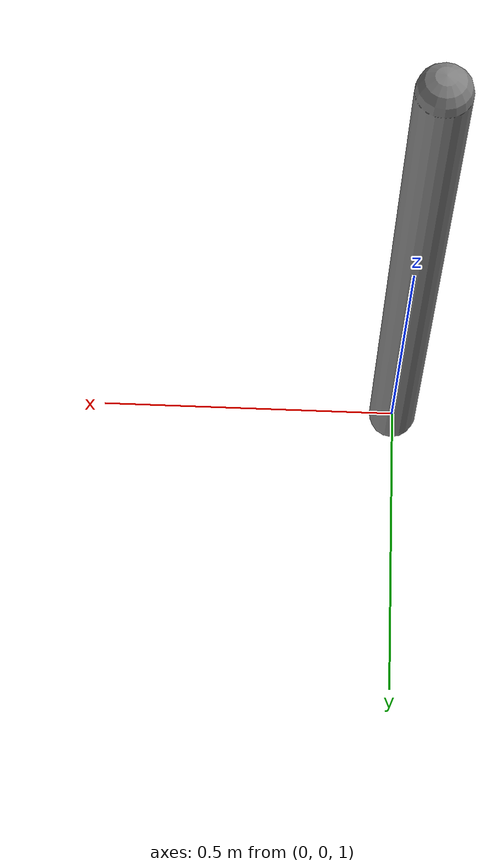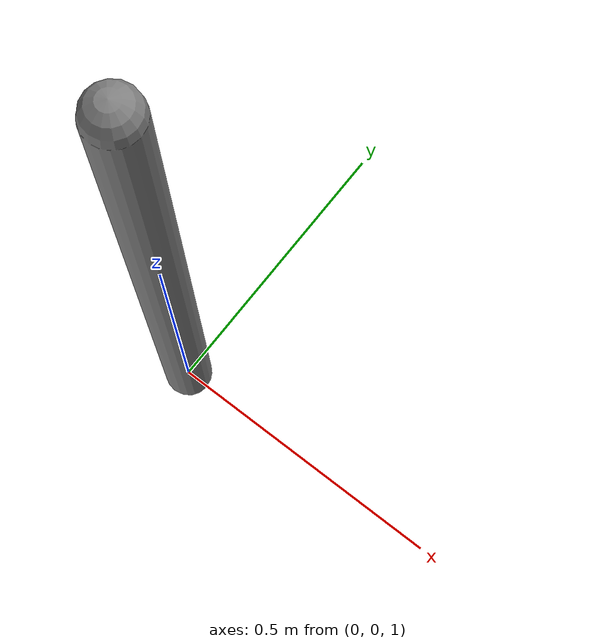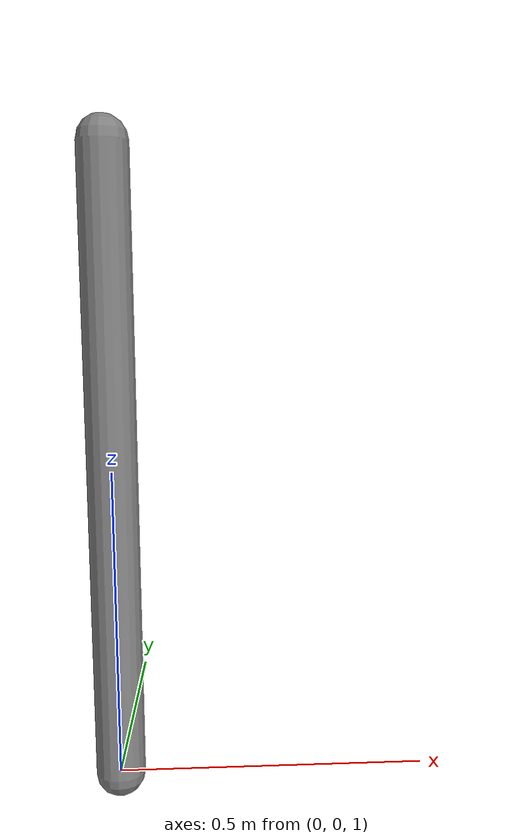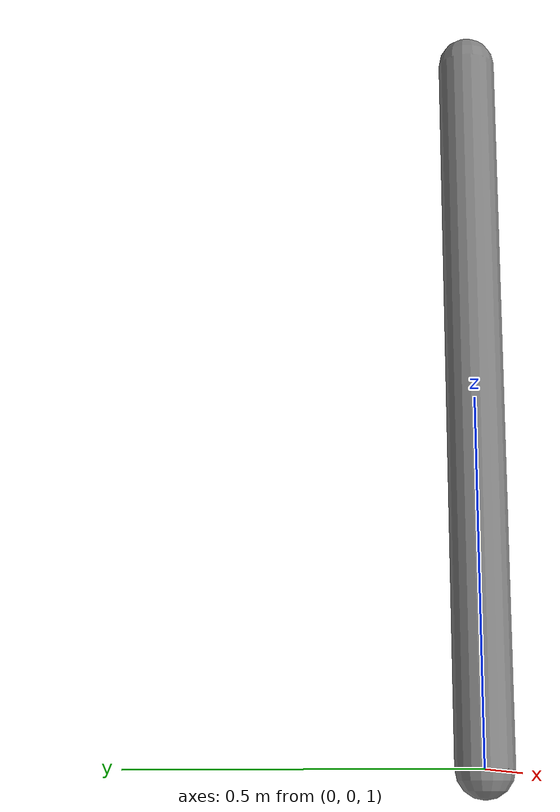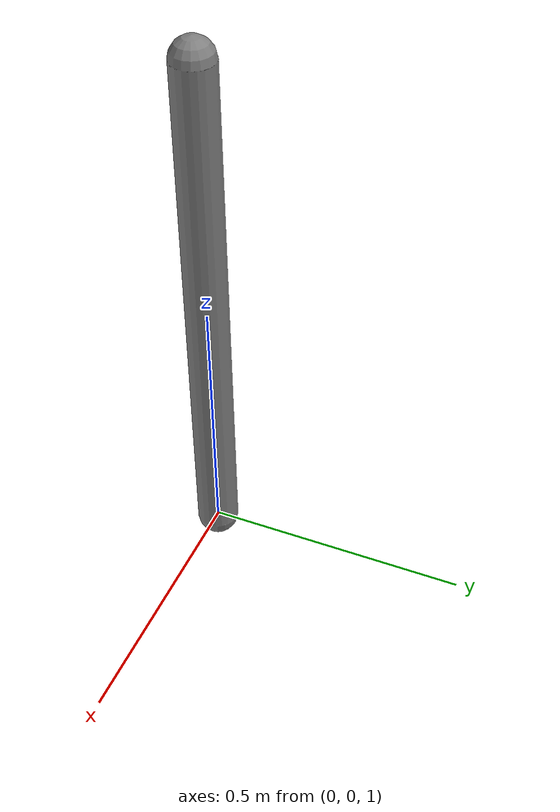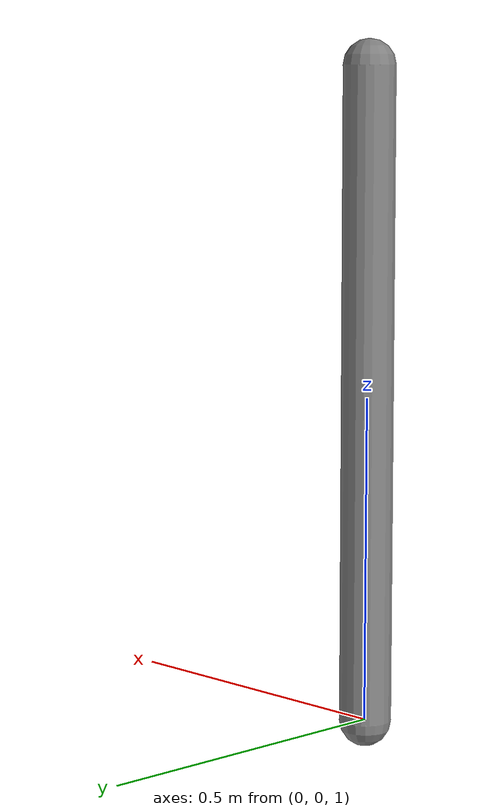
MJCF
<mujoco model="damper-dissipation">
  <option gravity="0 0 -9.81" timestep="0.001">
    <flag energy="enable"/>
  </option>
  <worldbody>
    <body name="arm" pos="0 0 2">
      <joint name="hinge_j" type="hinge" axis="0 1 0"
             stiffness="0" damping="2.0"/>
      <geom type="capsule" fromto="0 0 0 0 0 -1" size="0.04" mass="1.0"/>
    </body>
  </worldbody>
</mujoco>
